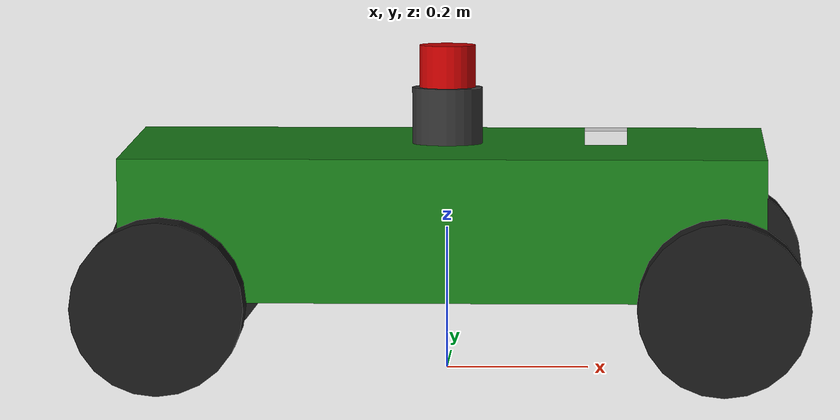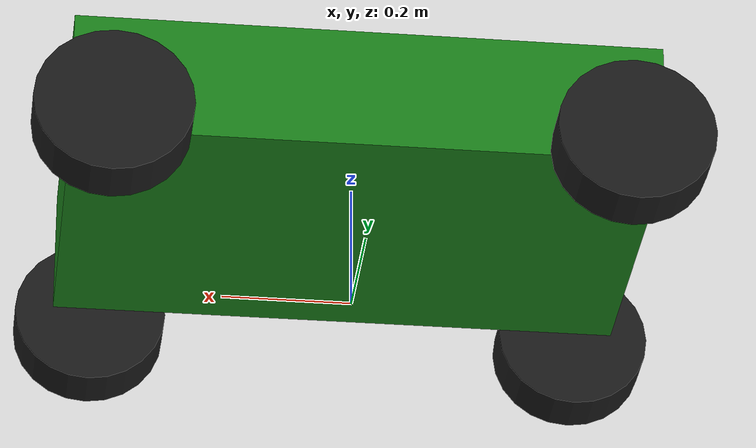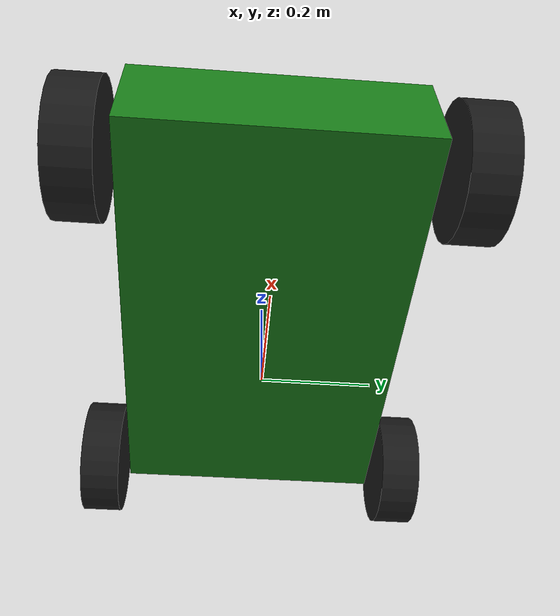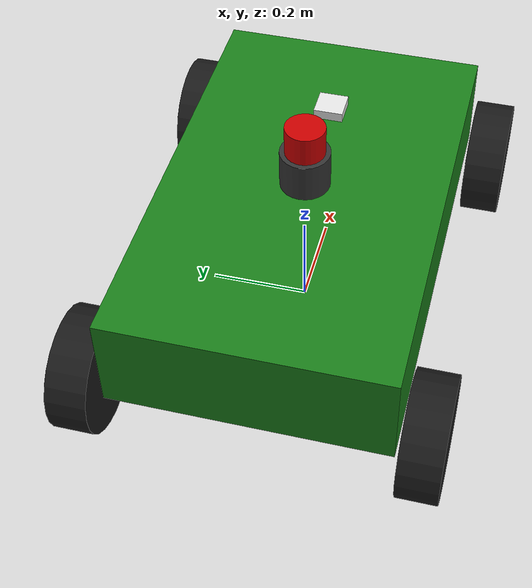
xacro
<?xml version="1.0"?>
<robot xmlns:xacro="http://www.ros.org/wiki/xacro" name="outdoor_amr">

  <!-- ==================== PROPERTIES ==================== -->
  <xacro:property name="chassis_length" value="0.90"/>
  <xacro:property name="chassis_width"  value="0.55"/>
  <xacro:property name="chassis_height" value="0.20"/>
  <xacro:property name="chassis_mass"   value="20.0"/>

  <xacro:property name="wheel_radius"   value="0.12"/>
  <xacro:property name="wheel_width"    value="0.08"/>
  <xacro:property name="wheel_mass"     value="1.5"/>
  <xacro:property name="wheel_x_offset" value="${chassis_length/2 - 0.06}"/>
  <xacro:property name="wheel_y_offset" value="${chassis_width/2 + wheel_width/2 + 0.01}"/>
  <xacro:property name="wheel_z_offset" value="${-chassis_height/2}"/>

  <!-- ==================== INERTIA MACROS ==================== -->
  <xacro:macro name="box_inertia" params="m x y z">
    <inertial>
      <mass value="${m}"/>
      <inertia ixx="${m*(y*y+z*z)/12}" ixy="0" ixz="0"
               iyy="${m*(x*x+z*z)/12}" iyz="0"
               izz="${m*(x*x+y*y)/12}"/>
    </inertial>
  </xacro:macro>

  <xacro:macro name="cylinder_inertia" params="m r h">
    <inertial>
      <mass value="${m}"/>
      <inertia ixx="${m*(3*r*r+h*h)/12}" ixy="0" ixz="0"
               iyy="${m*(3*r*r+h*h)/12}" iyz="0"
               izz="${m*r*r/2}"/>
    </inertial>
  </xacro:macro>

  <!-- ==================== BASE ==================== -->
  <link name="base_footprint"/>
  <joint name="base_joint" type="fixed">
    <parent link="base_footprint"/>
    <child  link="base_link"/>
    <origin xyz="0 0 ${wheel_radius + chassis_height/2}" rpy="0 0 0"/>
  </joint>

  <link name="base_link">
    <visual>
      <geometry><box size="${chassis_length} ${chassis_width} ${chassis_height}"/></geometry>
      <material name="chassis_green"><color rgba="0.1 0.5 0.1 1.0"/></material>
    </visual>
    <collision>
      <geometry><box size="${chassis_length} ${chassis_width} ${chassis_height}"/></geometry>
    </collision>
    <xacro:box_inertia m="${chassis_mass}" x="${chassis_length}" y="${chassis_width}" z="${chassis_height}"/>
  </link>
  <gazebo reference="base_link"><material>Gazebo/Green</material></gazebo>

  <!-- ==================== WHEEL MACRO ==================== -->
  <xacro:macro name="wheel" params="name x_pos y_pos">
    <link name="${name}_link">
      <visual>
        <geometry><cylinder radius="${wheel_radius}" length="${wheel_width}"/></geometry>
        <material name="wblack"><color rgba="0.1 0.1 0.1 1.0"/></material>
      </visual>
      <collision>
        <geometry><cylinder radius="${wheel_radius}" length="${wheel_width}"/></geometry>
      </collision>
      <xacro:cylinder_inertia m="${wheel_mass}" r="${wheel_radius}" h="${wheel_width}"/>
    </link>
    <joint name="${name}_joint" type="continuous">
      <parent link="base_link"/>
      <child  link="${name}_link"/>
      <origin xyz="${x_pos} ${y_pos} ${wheel_z_offset}" rpy="${pi/2} 0 0"/>
      <axis xyz="0 0 -1"/>
      <dynamics damping="0.1" friction="0.1"/>
    </joint>
    <gazebo reference="${name}_link">
      <material>Gazebo/Black</material>
      <mu1>1.5</mu1><mu2>1.5</mu2>
      <kp>1000000.0</kp><kd>100.0</kd>
    </gazebo>
  </xacro:macro>

  <!-- 4 Wheels -->
  <xacro:wheel name="front_left_wheel"  x_pos="${wheel_x_offset}"  y_pos="${wheel_y_offset}"/>
  <xacro:wheel name="front_right_wheel" x_pos="${wheel_x_offset}"  y_pos="${-wheel_y_offset}"/>
  <xacro:wheel name="rear_left_wheel"   x_pos="${-wheel_x_offset}" y_pos="${wheel_y_offset}"/>
  <xacro:wheel name="rear_right_wheel"  x_pos="${-wheel_x_offset}" y_pos="${-wheel_y_offset}"/>

  <!-- ==================== 3D LiDAR MOUNT ==================== -->
  <link name="lidar_mount_link">
    <visual>
      <geometry><cylinder radius="0.05" length="0.08"/></geometry>
      <material name="dark"><color rgba="0.2 0.2 0.2 1.0"/></material>
    </visual>
    <collision><geometry><cylinder radius="0.05" length="0.08"/></geometry></collision>
    <xacro:cylinder_inertia m="0.3" r="0.05" h="0.08"/>
  </link>
  <joint name="lidar_mount_joint" type="fixed">
    <parent link="base_link"/>
    <child  link="lidar_mount_link"/>
    <origin xyz="0 0 ${chassis_height/2 + 0.04}" rpy="0 0 0"/>
  </joint>
  <gazebo reference="lidar_mount_link"><material>Gazebo/DarkGray</material></gazebo>

  <!-- 3D LiDAR Sensor (VLP-16 style: 16 beams, 360°, 10Hz) -->
  <link name="lidar_3d_link">
    <visual>
      <geometry><cylinder radius="0.04" length="0.06"/></geometry>
      <material name="lred"><color rgba="0.8 0.0 0.0 1.0"/></material>
    </visual>
    <xacro:cylinder_inertia m="0.1" r="0.04" h="0.06"/>
  </link>
  <joint name="lidar_3d_joint" type="fixed">
    <parent link="lidar_mount_link"/>
    <child  link="lidar_3d_link"/>
    <origin xyz="0 0 0.07" rpy="0 0 0"/>
  </joint>

  <gazebo reference="lidar_3d_link">
    <material>Gazebo/Red</material>
    <sensor type="gpu_ray" name="lidar_3d_sensor">
      <pose>0 0 0 0 0 0</pose>
      <visualize>false</visualize>
      <update_rate>10</update_rate>
      <ray>
        <scan>
          <horizontal>
            <samples>360</samples>
            <resolution>1</resolution>
            <min_angle>-3.14159</min_angle>
            <max_angle>3.14159</max_angle>
          </horizontal>
          <vertical>
            <samples>16</samples>
            <resolution>1</resolution>
            <min_angle>-0.2618</min_angle>  <!-- -15 deg -->
            <max_angle>0.2618</max_angle>   <!-- +15 deg -->
          </vertical>
        </scan>
        <range>
          <min>0.5</min>
          <max>100.0</max>
          <resolution>0.01</resolution>
        </range>
        <noise>
          <type>gaussian</type>
          <mean>0.0</mean>
          <stddev>0.02</stddev>
        </noise>
      </ray>
      <plugin name="gazebo_ros_lidar3d" filename="libgazebo_ros_ray_sensor.so">
        <ros>
          <remapping>~/out:=points_raw</remapping>
        </ros>
        <output_type>sensor_msgs/PointCloud2</output_type>
        <frame_name>lidar_3d_link</frame_name>
      </plugin>
    </sensor>
  </gazebo>

  <!-- Also publish a 2D scan from horizontal slice of the 3D LiDAR -->
  <link name="scan_link">
    <xacro:cylinder_inertia m="0.01" r="0.01" h="0.01"/>
  </link>
  <joint name="scan_joint" type="fixed">
    <parent link="lidar_3d_link"/>
    <child  link="scan_link"/>
    <origin xyz="0 0 0" rpy="0 0 0"/>
  </joint>
  <gazebo reference="scan_link">
    <sensor type="ray" name="scan_2d_sensor">
      <pose>0 0 0 0 0 0</pose>
      <visualize>true</visualize>
      <update_rate>10</update_rate>
      <ray>
        <scan>
          <horizontal>
            <samples>360</samples>
            <resolution>1</resolution>
            <min_angle>-3.14159</min_angle>
            <max_angle>3.14159</max_angle>
          </horizontal>
        </scan>
        <range><min>0.5</min><max>80.0</max><resolution>0.01</resolution></range>
        <noise><type>gaussian</type><mean>0.0</mean><stddev>0.02</stddev></noise>
      </ray>
      <plugin name="gazebo_ros_scan" filename="libgazebo_ros_ray_sensor.so">
        <ros><remapping>~/out:=scan</remapping></ros>
        <output_type>sensor_msgs/LaserScan</output_type>
        <frame_name>scan_link</frame_name>
      </plugin>
    </sensor>
  </gazebo>

  <!-- ==================== GPS SENSOR ==================== -->
  <link name="gps_link">
    <visual>
      <geometry><box size="0.06 0.06 0.02"/></geometry>
      <material name="gwhite"><color rgba="0.9 0.9 0.9 1.0"/></material>
    </visual>
    <xacro:box_inertia m="0.05" x="0.06" y="0.06" z="0.02"/>
  </link>
  <joint name="gps_joint" type="fixed">
    <parent link="base_link"/>
    <child  link="gps_link"/>
    <origin xyz="${chassis_length/4} 0 ${chassis_height/2 + 0.01}" rpy="0 0 0"/>
  </joint>
  <gazebo reference="gps_link">
    <material>Gazebo/White</material>
    <sensor type="gps" name="gps_sensor">
      <pose>0 0 0 0 0 0</pose>
      <update_rate>5</update_rate>
      <plugin name="gazebo_ros_gps" filename="libgazebo_ros_gps_sensor.so">
        <ros>
          <remapping>~/out:=gps/fix</remapping>
        </ros>
        <frame_name>gps_link</frame_name>
      </plugin>
    </sensor>
  </gazebo>

  <!-- ==================== IMU ==================== -->
  <link name="imu_link">
    <xacro:box_inertia m="0.02" x="0.02" y="0.02" z="0.02"/>
  </link>
  <joint name="imu_joint" type="fixed">
    <parent link="base_link"/>
    <child  link="imu_link"/>
    <origin xyz="0 0 0" rpy="0 0 0"/>
  </joint>
  <gazebo reference="imu_link">
    <sensor type="imu" name="imu_sensor">
      <update_rate>100</update_rate>
      <plugin name="gazebo_ros_imu" filename="libgazebo_ros_imu_sensor.so">
        <ros><remapping>~/out:=imu/data</remapping></ros>
        <initial_orientation_as_reference>false</initial_orientation_as_reference>
      </plugin>
    </sensor>
  </gazebo>

  <!-- ==================== SKID STEER DRIVE ==================== -->
  <gazebo>
    <plugin name="outdoor_skid_steer" filename="libgazebo_ros_diff_drive.so">
      <ros>
        <remapping>cmd_vel:=outdoor/cmd_vel</remapping>
        <remapping>odom:=outdoor/odom</remapping>
      </ros>
      <update_rate>50</update_rate>
      <num_wheel_pairs>2</num_wheel_pairs>
      <left_joint>front_left_wheel_joint</left_joint>
      <right_joint>front_right_wheel_joint</right_joint>
      <left_joint>rear_left_wheel_joint</left_joint>
      <right_joint>rear_right_wheel_joint</right_joint>
      <wheel_separation>${2 * wheel_y_offset}</wheel_separation>
      <wheel_separation>${2 * wheel_y_offset}</wheel_separation>
      <wheel_diameter>${2 * wheel_radius}</wheel_diameter>
      <wheel_diameter>${2 * wheel_radius}</wheel_diameter>
      <max_wheel_torque>50.0</max_wheel_torque>
      <max_wheel_acceleration>2.0</max_wheel_acceleration>
      <command_topic>outdoor/cmd_vel</command_topic>
      <odometry_topic>outdoor/odom</odometry_topic>
      <odometry_frame>outdoor/odom</odometry_frame>
      <robot_base_frame>base_footprint</robot_base_frame>
      <publish_odom>true</publish_odom>
      <publish_odom_tf>true</publish_odom_tf>
      <publish_wheel_tf>true</publish_wheel_tf>
    </plugin>
  </gazebo>

  <!-- Joint State Publisher -->
  <gazebo>
    <plugin name="outdoor_joint_state" filename="libgazebo_ros_joint_state_publisher.so">
      <ros><remapping>joint_states:=outdoor/joint_states</remapping></ros>
      <joint_name>front_left_wheel_joint</joint_name>
      <joint_name>front_right_wheel_joint</joint_name>
      <joint_name>rear_left_wheel_joint</joint_name>
      <joint_name>rear_right_wheel_joint</joint_name>
      <update_rate>50</update_rate>
    </plugin>
  </gazebo>

</robot>
